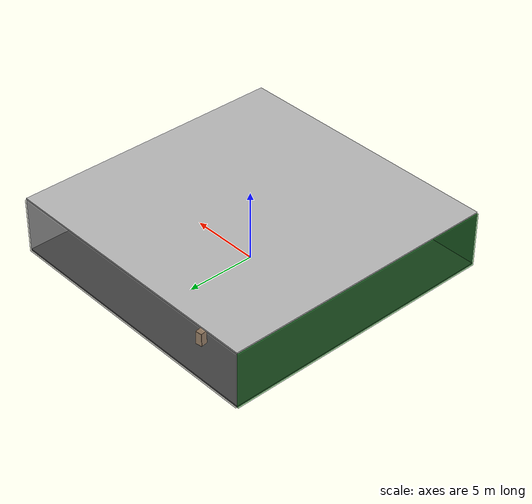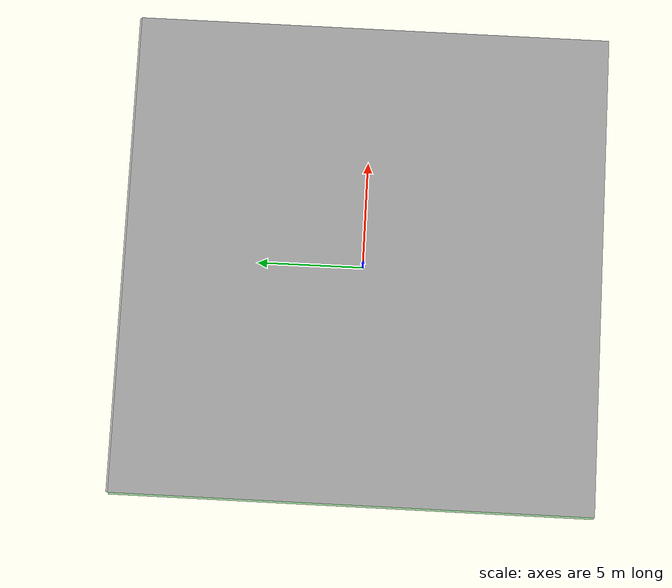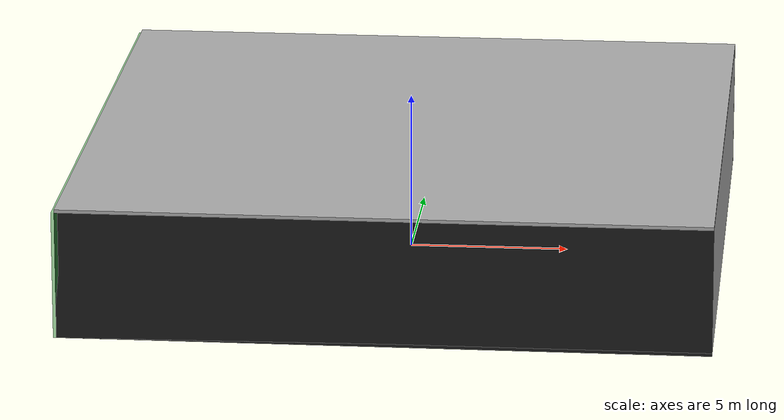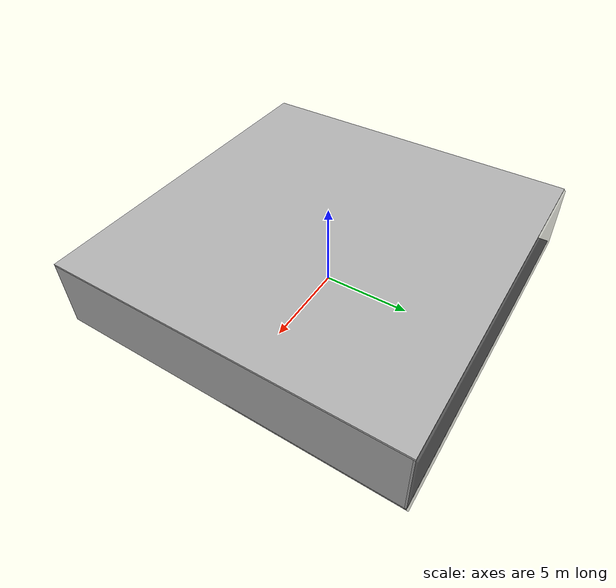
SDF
<sdf version="1.4">
 <world name="default">
  <physics type="ode">
   <max_step_size>0.001</max_step_size>
   <real_time_factor>1</real_time_factor>
   <real_time_update_rate>1000</real_time_update_rate>
   <gravity>0 0 -9.8</gravity>
  </physics>
  <scene><ambient>0.4 0.4 0.4 1</ambient><background>0.7 0.7 0.7 1</background><shadows>1</shadows></scene>
  <model name="Surrounding">
   <static>1</static>
   <link name="Ceiling">
    <collision name="Ceiling_Collision"><geometry><box><size>20 20 0.1</size></box></geometry></collision>
    <visual name="Ceiling_Visual">
     <geometry><box><size>20 20 0.1</size></box></geometry>
     <material>
      <script><uri>file://media/materials/scripts/gazebo.material</uri><name>Gazebo/CloudySky</name></script>
     </material>
    </visual>
    <pose>0 0 4.05 0 0 0</pose>
   </link>
   <link name="Wall_South">
    <collision name="Wall_South_Collision">
     <geometry><box><size>20 0 4</size></box></geometry>
     <pose>0 0 2 0 -0 0</pose>
    </collision>
    <visual name="Wall_South_Visual">
     <pose>0 0 2 0 -0 0</pose>
     <geometry><box><size>20 0 4</size></box></geometry>
     <material>
      <script><uri>file://media/materials/scripts/gazebo.material</uri><name>Gazebo/Black</name></script>
     </material>
    </visual>
    <velocity_decay><linear>0</linear><angular>0</angular></velocity_decay>
    <pose>0 -10 0 0 -0 0</pose>
   </link>
   <link name="Wall_East">
    <collision name="Wall_21_Collision">
     <geometry><box><size>20 0 4</size></box></geometry>
     <pose>0 0 2 0 -0 0</pose>
    </collision>
    <visual name="Wall_21_Visual">
     <pose>0 0 2 0 -0 0</pose>
     <geometry><box><size>20 0 4</size></box></geometry>
     <material>
      <script><uri>file://media/materials/scripts/gazebo.material</uri><name>Gazebo/Grey</name></script>
     </material>
    </visual>
    <velocity_decay><linear>0</linear><angular>0</angular></velocity_decay>
    <pose>10 0 0 0 -0 1.5708</pose>
   </link>
   <link name="Wall_North">
    <collision name="Wall_22_Collision">
     <geometry><box><size>20 0.2 4</size></box></geometry>
     <pose>0 0 2 0 -0 0</pose>
    </collision>
    <visual name="Wall_22_Visual">
     <pose>0 0 2 0 -0 0</pose>
     <geometry><box><size>20 0.2 4</size></box></geometry>
     <material>
      <script><uri>file://media/materials/scripts/gazebo.material</uri><name>Gazebo/GreyTransparent</name></script>
     </material>
    </visual>
    <velocity_decay><linear>0</linear><angular>0</angular></velocity_decay>
    <pose>0 10 0 0 -0 0</pose>
   </link>
   <link name="Wall_West">
    <collision name="Wall_23_Collision">
     <geometry><box><size>20 0.2 4</size></box></geometry>
     <pose>0 0 2 0 -0 0</pose>
    </collision>
    <visual name="Wall_23_Visual">
     <pose>0 0 2 0 -0 0</pose>
     <geometry><box><size>20 0.2 4</size></box></geometry>
     <material>
      <script><uri>file://media/materials/scripts/gazebo.material</uri><name>Gazebo/GreenTransparent</name></script>
     </material>
    </visual>
    <velocity_decay><linear>0</linear><angular>0</angular></velocity_decay>
    <pose>-10 0 0 0 0 -1.5708</pose>
   </link>
   <link name="Ground_link">
    <collision name="collision">
     <pose>0 0 .05 0 -0 0</pose>
     <geometry><box><size>20 20 0.1</size></box></geometry>
    </collision>
    <visual name="visual">
     <pose>0 0 .05 0 -0 0</pose>
     <geometry><box><size>20 20 0.1</size></box></geometry>
     <material>
      <script><uri>file://media/materials/scripts/gazebo.material</uri><name>Gazebo/FlatBlack</name></script>
     </material>
    </visual>
   </link>
   <static>1</static>
  </model>
  <spherical_coordinates>
   <surface_model>EARTH_WGS84</surface_model>
   <latitude_deg>0</latitude_deg>
   <longitude_deg>0</longitude_deg>
   <elevation>0</elevation>
   <heading_deg>0</heading_deg>
  </spherical_coordinates>
  <light name="lightball_0" type="diffuse">
   <diffuse>0.8 0.8 0.8 1</diffuse>
   <specular>0.2 0.2 0.2 1</specular>
   <attenuation>
    <range>100</range>
    <constant>0.7</constant>
    <linear>0.01</linear>
    <quadratic>0.001</quadratic>
   </attenuation>
   <direction>-0.5 0.1 -0.9</direction>
   <pose>1.84533332011 8.39737773679 2.16835183302 0 0 0</pose>
  </light>
  <light name="lightball_1" type="diffuse">
   <diffuse>0.8 0.8 0.8 1</diffuse>
   <specular>0.2 0.2 0.2 1</specular>
   <attenuation>
    <range>100</range>
    <constant>0.7</constant>
    <linear>0.01</linear>
    <quadratic>0.001</quadratic>
   </attenuation>
   <direction>-0.5 0.1 -0.9</direction>
   <pose>2.98713786712 8.16305137652 2.76784729516 0 0 0</pose>
  </light>
  <light name="lightball_2" type="diffuse">
   <diffuse>0.8 0.8 0.8 1</diffuse>
   <specular>0.2 0.2 0.2 1</specular>
   <attenuation>
    <range>100</range>
    <constant>0.7</constant>
    <linear>0.01</linear>
    <quadratic>0.001</quadratic>
   </attenuation>
   <direction>-0.5 0.1 -0.9</direction>
   <pose>-3.14860772049 7.0074822193 3.8792676202 0 0 0</pose>
  </light>
  <light name="lightball_3" type="diffuse">
   <diffuse>0.8 0.8 0.8 1</diffuse>
   <specular>0.2 0.2 0.2 1</specular>
   <attenuation>
    <range>100</range>
    <constant>0.7</constant>
    <linear>0.01</linear>
    <quadratic>0.001</quadratic>
   </attenuation>
   <direction>-0.5 0.1 -0.9</direction>
   <pose>-7.10952595176 -6.22325180886 1.19529361575 0 0 0</pose>
  </light>
  <light name="lightball_4" type="diffuse">
   <diffuse>0.8 0.8 0.8 1</diffuse>
   <specular>0.2 0.2 0.2 1</specular>
   <attenuation>
    <range>100</range>
    <constant>0.7</constant>
    <linear>0.01</linear>
    <quadratic>0.001</quadratic>
   </attenuation>
   <direction>-0.5 0.1 -0.9</direction>
   <pose>5.14902768854 -1.97173224506 2.78071668022 0 0 0</pose>
  </light>
  <light name="lightball_5" type="diffuse">
   <diffuse>0.8 0.8 0.8 1</diffuse>
   <specular>0.2 0.2 0.2 1</specular>
   <attenuation>
    <range>100</range>
    <constant>0.7</constant>
    <linear>0.01</linear>
    <quadratic>0.001</quadratic>
   </attenuation>
   <direction>-0.5 0.1 -0.9</direction>
   <pose>7.1109446459 -2.93013092485 2.04862864014 0 0 0</pose>
  </light>
  <include><uri>model://cabinet</uri><pose>-5.17331948815 -3.76321201445 0 0 0 2.04569542276</pose></include>
  <include><uri>model://cabinet</uri><pose>-4.35608940391 -2.1860327322 0 0 0 2.82213971423</pose></include>
  <include><uri>model://cabinet</uri><pose>-4.41697067073 7.91203818669 0 0 0 1.70873696141</pose></include>
  <include><uri>model://cabinet</uri><pose>-2.10950591584 2.25828799604 0 0 0 1.03070858743</pose></include>
  <include><uri>model://cabinet</uri><pose>0.8420793858 0.926332790814 0 0 0 2.69063871745</pose></include>
  <include>
   <uri>model://textured_shapes</uri>
   <pose>7.09249050561 -3.7159398623 0 0 0 1.11272019269</pose>
  </include>
  <include><uri>model://cabinet</uri><pose>7.00928624646 1.50856891968 0 0 0 0.876448204182</pose></include>
 </world>
</sdf>

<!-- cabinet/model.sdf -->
<sdf version="1.5">
  <model name="cabinet">
    <static>true</static>
    <link name="cabinet_bottom_plate">
      <inertial>
        <pose>0 0 -1 0 0 0</pose>
        <inertia>
          <ixx>2.050000</ixx>
          <ixy>0</ixy>
          <ixz>0</ixz>
          <iyy>2.050000</iyy>
          <iyz>0</iyz>
          <izz>2.050000</izz>
        </inertia>
        <mass>25.000000</mass>
      </inertial>
      <collision name="cabinet_bottom_plate_geom">
        <pose>0 0 0.010000 0 0 0</pose>
        <geometry>
          <box>
            <size>0.450000 0.450000 0.020000</size>
          </box>
        </geometry>
      </collision>
      <visual name="cabinet_bottom_plate_geom_visual">
        <pose>0 0 0.010000 0 0 0</pose>
        <geometry>
          <box>
            <size>0.450000 0.450000 0.020000</size>
          </box>
        </geometry>
        <material>
          <script>
            <uri>model://media/materials/scripts/gazebo.material</uri>
            <name>Gazebo/Wood</name>
          </script>
        </material>
      </visual>
      <collision name="cabinet_bottom_plate_geom_cabinet_back_plate">
        <pose>0.235000 0 0.510000 0 0 0</pose>
        <geometry>
          <box>
            <size>0.020000 0.450000 1.020000</size>
          </box>
        </geometry>
      </collision>
      <visual name="cabinet_bottom_plate_geom_cabinet_back_plate_visual">
        <pose>0.235000 0 0.510000 0 0 0</pose>
        <geometry>
          <box>
            <size>0.020000 0.450000 1.020000</size>
          </box>
        </geometry>
        <material>
          <script>
            <uri>model://media/materials/scripts/gazebo.material</uri>
            <name>Gazebo/Wood</name>
          </script>
        </material>
      </visual>
      <collision name="cabinet_bottom_plate_geom_cabinet_left_plate">
        <pose>0 0.235000 0.510000 0 0 0</pose>
        <geometry>
          <box>
            <size>0.450000 0.020000 1.020000</size>
          </box>
        </geometry>
      </collision>
      <visual name="cabinet_bottom_plate_geom_cabinet_left_plate_visual">
        <pose>0 0.235000 0.510000 0 0 0</pose>
        <geometry>
          <box>
            <size>0.450000 0.020000 1.020000</size>
          </box>
        </geometry>
        <material>
          <script>
            <uri>model://media/materials/scripts/gazebo.material</uri>
            <name>Gazebo/Wood</name>
          </script>
        </material>
      </visual>
      <collision name="cabinet_bottom_plate_geom_cabinet_middle_plate">
        <pose>0 0 0.510000 0 0 0</pose>
        <geometry>
          <box>
            <size>0.450000 0.450000 0.020000</size>
          </box>
        </geometry>
      </collision>
      <visual name="cabinet_bottom_plate_geom_cabinet_middle_plate_visual">
        <pose>0 0 0.510000 0 0 0</pose>
        <geometry>
          <box>
            <size>0.450000 0.450000 0.020000</size>
          </box>
        </geometry>
        <material>
          <script>
            <uri>model://media/materials/scripts/gazebo.material</uri>
            <name>Gazebo/Wood</name>
          </script>
        </material>
      </visual>
      <collision name="cabinet_bottom_plate_geom_cabinet_right_plate">
        <pose>0 -0.235000 0.510000 0 0 0</pose>
        <geometry>
          <box>
            <size>0.450000 0.020000 1.020000</size>
          </box>
        </geometry>
      </collision>
      <visual name="cabinet_bottom_plate_geom_cabinet_right_plate_visual">
        <pose>0 -0.235000 0.510000 0 0 0</pose>
        <geometry>
          <box>
            <size>0.450000 0.020000 1.020000</size>
          </box>
        </geometry>
        <material>
          <script>
            <uri>model://media/materials/scripts/gazebo.material</uri>
            <name>Gazebo/Wood</name>
          </script>
        </material>
      </visual>
      <collision name="cabinet_bottom_plate_geom_cabinet_top_plate">
        <pose>0 0 1.010000 0 0 0</pose>
        <geometry>
          <box>
            <size>0.450000 0.450000 0.020000</size>
          </box>
        </geometry>
      </collision>
      <visual name="cabinet_bottom_plate_geom_cabinet_top_plate_visual">
        <pose>0 0 1.010000 0 0 0</pose>
        <geometry>
          <box>
            <size>0.450000 0.450000 0.020000</size>
          </box>
        </geometry>
        <material>
          <script>
            <uri>model://media/materials/scripts/gazebo.material</uri>
            <name>Gazebo/Wood</name>
          </script>
        </material>
      </visual>
    </link>
  </model>
</sdf>

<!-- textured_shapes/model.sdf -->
<sdf version="1.6">
  <model name="textured_shapes">
    <pose>0 0 0.5 0 0 0</pose>
    <link name="box">
      <pose>0 -1.5 0 0 0 0</pose>
      <collision name="collision">
        <geometry>
          <box>
            <size>1 1 1</size>
          </box>
        </geometry>
      </collision>
      <visual name="visual">
        <geometry>
          <box>
            <size>1 1 1</size>
          </box>
        </geometry>
        <material>
          <script>
            <uri>model://../model_source/models/textured_shapes/materials/scripts</uri>
            <uri>model://../model_source/models/textured_shapes/materials/textures</uri>
            <name>TexturedShape/Squares</name>
          </script>
        </material>
      </visual>
    </link>
    <link name="sphere">
      <collision name="collision">
        <geometry>
          <sphere>
            <radius>0.5</radius>
          </sphere>
        </geometry>
      </collision>
      <visual name="visual">
        <geometry>
          <sphere>
            <radius>0.5</radius>
          </sphere>
        </geometry>
        <material>
          <script>
            <uri>model://../model_source/models/textured_shapes/materials/scripts</uri>
            <uri>model://../model_source/models/textured_shapes/materials/textures</uri>
            <name>TexturedShape/Squares</name>
          </script>
        </material>
      </visual>
    </link>
    <link name="cylinder">
      <pose>0 1.5 0 0 0 0</pose>
      <collision name="collision">
        <geometry>
          <cylinder>
            <radius>0.5</radius>
            <length>1</length>
          </cylinder>
        </geometry>
      </collision>
      <visual name="visual">
        <geometry>
          <cylinder>
            <radius>0.5</radius>
            <length>1</length>
          </cylinder>
        </geometry>
        <material>
          <script>
            <uri>model://../model_source/models/textured_shapes/materials/scripts</uri>
            <uri>model://../model_source/models/textured_shapes/materials/textures</uri>
            <name>TexturedShape/Squares</name>
          </script>
        </material>
      </visual>
    </link>
  </model>
</sdf>
